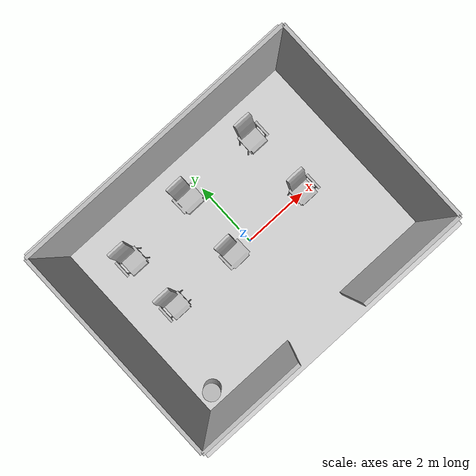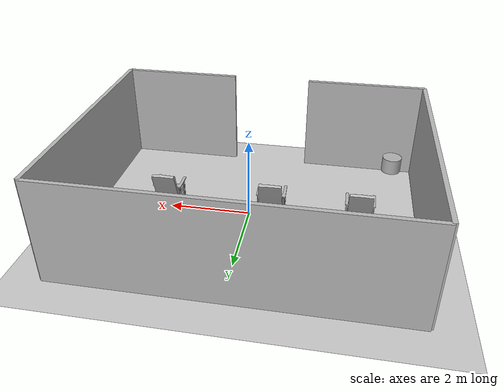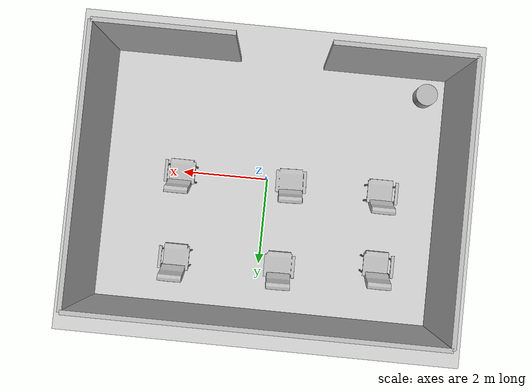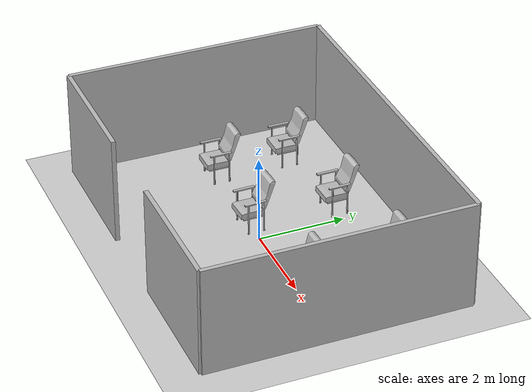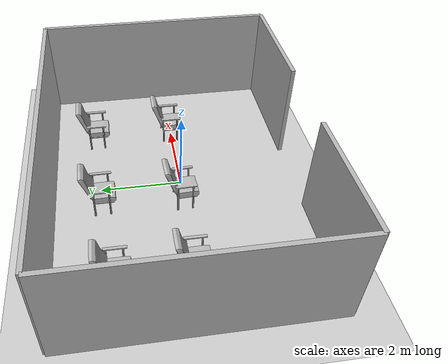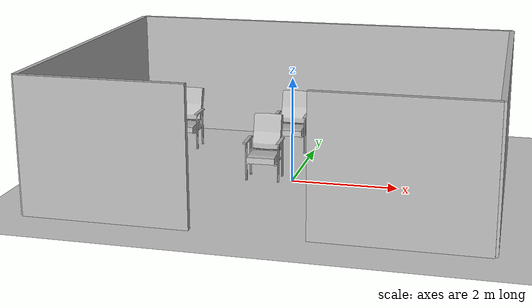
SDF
<sdf version="1.9">
 <world name="classroom">
  <physics type="ode">
   <max_step_size>0.001</max_step_size>
   <real_time_update_rate>1000</real_time_update_rate>
   <real_time_factor>1</real_time_factor>
  </physics>
  <scene><ambient>0.5 0.5 0.5 1</ambient><background>0.7 0.7 0.7 1</background><shadows>true</shadows></scene>
  <gravity>0 0 -9.8</gravity>
  <magnetic_field>6e-06 2.3e-05 -4.2e-05</magnetic_field>
  <atmosphere type="adiabatic"/>
  <include><uri>https://fuel.gazebosim.org/1.0/OpenRobotics/models/Ground Plane</uri></include>
  <model name="classroom_walls">
   <static>true</static>
   <link name="walls">
    <visual name="back_wall_vis">
     <geometry><box><size>8 0.1 2.5</size></box></geometry>
     <pose>0 -3 1.25 0 0 0</pose>
    </visual>
    <collision name="back_wall_col">
     <geometry><box><size>8 0.1 2.5</size></box></geometry>
     <pose>0 -3 1.25 0 0 0</pose>
    </collision>
    <visual name="front_wall_left_vis">
     <geometry><box><size>3 0.1 2.5</size></box></geometry>
     <pose>-2.5 3 1.25 0 0 0</pose>
    </visual>
    <collision name="front_wall_left_col">
     <geometry><box><size>3 0.1 2.5</size></box></geometry>
     <pose>-2.5 3 1.25 0 0 0</pose>
    </collision>
    <visual name="front_wall_right_vis">
     <geometry><box><size>3 0.1 2.5</size></box></geometry>
     <pose>2.5 3 1.25 0 0 0</pose>
    </visual>
    <collision name="front_wall_right_col">
     <geometry><box><size>3 0.1 2.5</size></box></geometry>
     <pose>2.5 3 1.25 0 0 0</pose>
    </collision>
    <visual name="left_wall_vis">
     <geometry><box><size>0.1 6 2.5</size></box></geometry>
     <pose>-4 0 1.25 0 0 0</pose>
    </visual>
    <collision name="left_wall_col">
     <geometry><box><size>0.1 6 2.5</size></box></geometry>
     <pose>-4 0 1.25 0 0 0</pose>
    </collision>
    <visual name="right_wall_vis">
     <geometry><box><size>0.1 6 2.5</size></box></geometry>
     <pose>4 0 1.25 0 0 0</pose>
    </visual>
    <collision name="right_wall_col">
     <geometry><box><size>0.1 6 2.5</size></box></geometry>
     <pose>4 0 1.25 0 0 0</pose>
    </collision>
    <inertial>
     <mass>1</mass>
     <inertia><ixx>1</ixx><ixy>0</ixy><ixz>0</ixz><iyy>1</iyy><iyz>0</iyz><izz>1</izz></inertia>
    </inertial>
   </link>
   <pose>-0.110501 0.158332 0 0 0 -3.14085</pose>
  </model>
  <include>
   <uri>https://fuel.gazebosim.org/1.0/OpenRobotics/models/VisitorChair</uri>
   <name>chair_row1_left</name>
   <pose>-2.73409 1.7574 0 0 -0 0</pose>
  </include>
  <include>
   <uri>https://fuel.gazebosim.org/1.0/OpenRobotics/models/VisitorChair</uri>
   <name>chair_row1_right</name>
   <pose>1.93869 2.03254 0 0 -0 0</pose>
  </include>
  <include>
   <uri>https://fuel.gazebosim.org/1.0/OpenRobotics/models/VisitorChair</uri>
   <name>chair_row2_left</name>
   <pose>-2.67904 0.081298 0 0 -0 0</pose>
  </include>
  <include>
   <uri>https://fuel.gazebosim.org/1.0/OpenRobotics/models/VisitorChair</uri>
   <name>chair_row2_right</name>
   <pose>1.9936 0.056841 0 0 -0 0</pose>
  </include>
  <include>
   <uri>https://fuel.gazebosim.org/1.0/OpenRobotics/models/VisitorChair</uri>
   <name>chair_row1_right_1</name>
   <pose>-0.565522 0.037428 0 0 -0 0.034263</pose>
  </include>
  <include>
   <uri>https://fuel.gazebosim.org/1.0/OpenRobotics/models/VisitorChair</uri>
   <name>chair_row1_right_2</name>
   <pose>-0.479933 1.98385 0 0 -0 0.014969</pose>
  </include>
  <model name="cylinder">
   <pose>-3.5 -2.3 0.5 0 -0 0</pose>
   <link name="cylinder_link">
    <inertial>
     <inertia>
      <ixx>0.14580000000000001</ixx>
      <ixy>0</ixy>
      <ixz>0</ixz>
      <iyy>0.14580000000000001</iyy>
      <iyz>0</iyz>
      <izz>0.125</izz>
     </inertia>
     <mass>1</mass>
    </inertial>
    <collision name="cylinder_collision">
     <geometry><cylinder><radius>0.25</radius><length>0.4</length></cylinder></geometry>
    </collision>
    <visual name="cylinder_visual">
     <geometry><cylinder><radius>0.25</radius><length>0.4</length></cylinder></geometry>
     <material>
      <ambient>0.3 0.3 0.3 1</ambient>
      <diffuse>0.7 0.7 0.7 1</diffuse>
      <specular>1 1 1 1</specular>
     </material>
    </visual>
   </link>
   <static>false</static>
  </model>
  <light name="classroom_sun" type="directional">
   <pose>0 0 10 0 -0 0</pose>
   <intensity>1</intensity>
   <direction>-0.5 0.1 -0.9</direction>
   <diffuse>0.8 0.8 0.8 1</diffuse>
   <specular>0.2 0.2 0.2 1</specular>
   <attenuation>
    <range>1000</range>
    <linear>0.01</linear>
    <constant>0.90000000000000002</constant>
    <quadratic>0.001</quadratic>
   </attenuation>
   <spot><inner_angle>0</inner_angle><outer_angle>0</outer_angle><falloff>0</falloff></spot>
  </light>
 </world>
</sdf>

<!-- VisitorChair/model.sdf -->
<sdf version="1.6">
  <model name="VisitorChair">
   <static>true</static>
    <link name="body">
      <pose>0 0 0 0 0 0</pose>

      <visual name="visual">
        <geometry>
          <mesh>
            <uri>model://VisitorChair/meshes/VisitorChair.obj</uri>
          </mesh>
        </geometry>
      </visual>

      <collision name="collision">
        <geometry>
          <mesh>
            <uri>model://VisitorChair/meshes/VisitorChair_Col.obj</uri>
          </mesh>
        </geometry>
      </collision>

    </link>
  </model>
</sdf>
